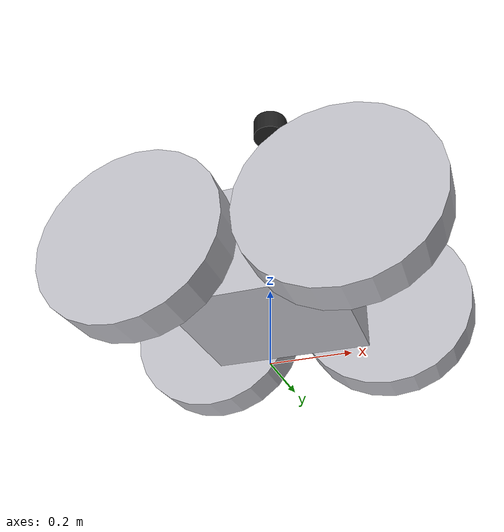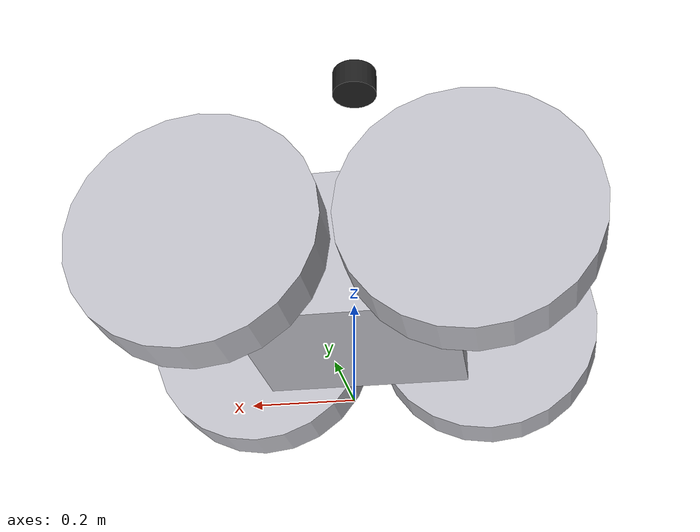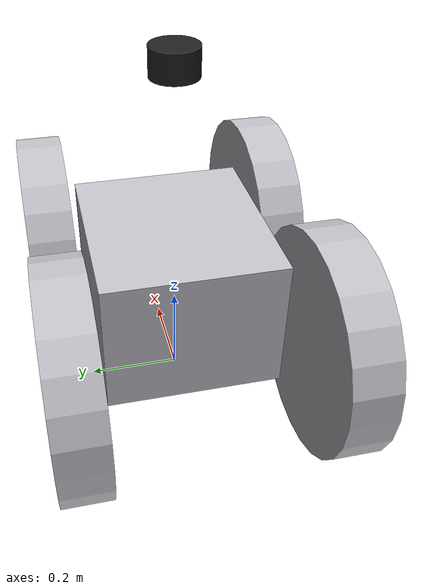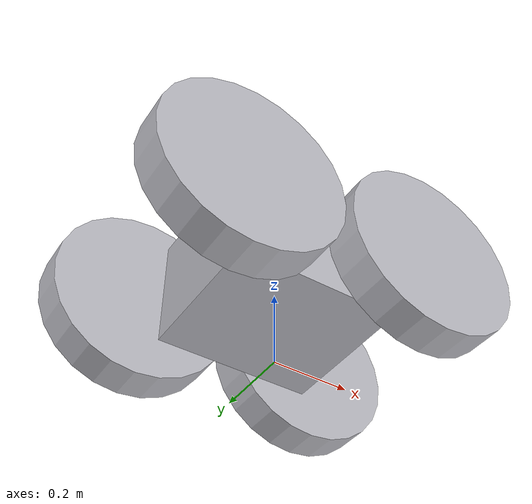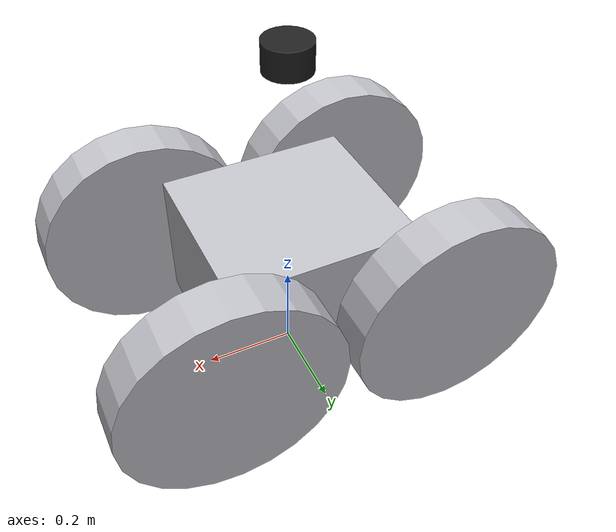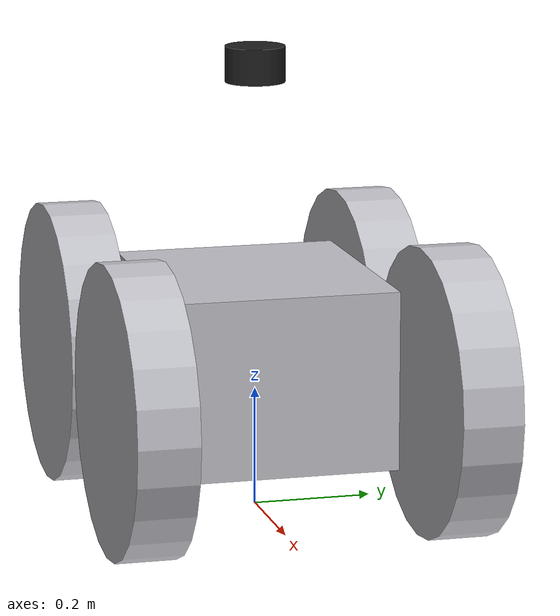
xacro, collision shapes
<?xml version="1.0" ?>
<robot name="diadem" xmlns:xacro="http://www.ros.org/wiki/xacro">

<xacro:include filename="$(find diadem_description)/urdf/materials.xacro" />
<xacro:include filename="$(find diadem_description)/urdf/diadem.trans" />
<xacro:include filename="$(find diadem_description)/urdf/diadem.gazebo" />

<link name="base_link">
  <inertial>
    <!-- CoM slightly above geometric center; Z≈0.15 (half of 0.30m body height) -->
    <origin xyz="0.0 0.0 0.15" rpy="0 0 0"/>
    <mass value="90.0"/>
    <inertia ixx="3.112" iyy="5.595" izz="7.357" ixy="0.0" iyz="0.0" ixz="0.0"/>
  </inertial>
  <visual>
    <origin xyz="0 0 0" rpy="0 0 0"/>
    <geometry>
      <mesh filename="package://diadem_description/meshes/base_link.dae" scale="0.000892857 0.00080 0.00133333"/>
    </geometry>
    <material name="silver"/>
  </visual>
  <collision name="base_link_collision">
    <!-- Inset collision: X=0.42m, Y=0.38m (clears wheels completely), Z=0.25m (floats above ground) -->
    <origin xyz="0 0 0.25" rpy="0 0 0"/>
    <geometry>
      <box size="0.42 0.38 0.30"/>
    </geometry>
  </collision>
</link>

<!-- =================== WHEELS =================== -->

<link name="RR_wheel_1">
  <inertial>
    <origin xyz="0.0 0.0 0.0" rpy="0 0 0"/>
    <mass value="11.4"/>
    <inertia ixx="0.174" iyy="0.328" izz="0.174" ixy="0.0" iyz="0.0" ixz="0.0"/>
  </inertial>
  <visual>
    <!-- Exact mathematical offset to center the scaled wheel at joint origin -->
    <origin xyz="0.37333 0.40 -0.24" rpy="0 0 0"/>
    <geometry>
      <mesh filename="package://diadem_description/meshes/RR_wheel_1.dae" scale="0.00133333 0.00133333 0.00133333"/>
    </geometry>
    <material name="silver"/>
  </visual>
  <collision name="RR_wheel_1_collision">
    <origin xyz="0 0 0" rpy="1.57079632679 0 0"/>
    <geometry>
      <cylinder radius="0.24" length="0.10"/>
    </geometry>
  </collision>
</link>

<link name="FL_wheel_1">
  <inertial>
    <origin xyz="0.0 0.0 0.0" rpy="0 0 0"/>
    <mass value="11.4"/>
    <inertia ixx="0.174" iyy="0.328" izz="0.174" ixy="0.0" iyz="0.0" ixz="0.0"/>
  </inertial>
  <visual>
    <origin xyz="-0.37333 -0.40 -0.24" rpy="0 0 0"/>
    <geometry>
      <mesh filename="package://diadem_description/meshes/FL_wheel_1.dae" scale="0.00133333 0.00133333 0.00133333"/>
    </geometry>
    <material name="silver"/>
  </visual>
  <collision name="FL_wheel_1_collision">
    <origin xyz="0 0 0" rpy="1.57079632679 0 0"/>
    <geometry>
      <cylinder radius="0.24" length="0.10"/>
    </geometry>
  </collision>
</link>

<link name="RL_wheel_1">
  <inertial>
    <origin xyz="0.0 0.0 0.0" rpy="0 0 0"/>
    <mass value="11.4"/>
    <inertia ixx="0.174" iyy="0.328" izz="0.174" ixy="0.0" iyz="0.0" ixz="0.0"/>
  </inertial>
  <visual>
    <origin xyz="0.37333 -0.40 -0.24" rpy="0 0 0"/>
    <geometry>
      <mesh filename="package://diadem_description/meshes/RL_wheel_1.dae" scale="0.00133333 0.00133333 0.00133333"/>
    </geometry>
    <material name="silver"/>
  </visual>
  <collision name="RL_wheel_1_collision">
    <origin xyz="0 0 0" rpy="1.57079632679 0 0"/>
    <geometry>
      <cylinder radius="0.24" length="0.10"/>
    </geometry>
  </collision>
</link>

<link name="FR_wheel_1">
  <inertial>
    <origin xyz="0.0 0.0 0.0" rpy="0 0 0"/>
    <mass value="11.4"/>
    <inertia ixx="0.174" iyy="0.328" izz="0.174" ixy="0.0" iyz="0.0" ixz="0.0"/>
  </inertial>
  <visual>
    <origin xyz="-0.37333 0.40 -0.24" rpy="0 0 0"/>
    <geometry>
      <mesh filename="package://diadem_description/meshes/FR_wheel_1.dae" scale="0.00133333 0.00133333 0.00133333"/>
    </geometry>
    <material name="silver"/>
  </visual>
  <collision name="FR_wheel_1_collision">
    <origin xyz="0 0 0" rpy="1.57079632679 0 0"/>
    <geometry>
      <cylinder radius="0.24" length="0.10"/>
    </geometry>
  </collision>
</link>

<!-- =================== LiDAR =================== -->
<!-- Modelled as RP-LiDAR A3 equivalent: r=0.05m, h=0.06m, mass=0.19kg -->
<link name="lidar">
  <inertial>
    <origin xyz="0 0 0" rpy="0 0 0"/>
    <mass value="0.19"/>
    <inertia ixx="0.0002" iyy="0.0002" izz="0.0003" ixy="0.0" iyz="0.0" ixz="0.0"/>
  </inertial>
  <visual>
    <origin xyz="0 0 0" rpy="0 0 0"/>
    <geometry>
      <cylinder radius="0.05" length="0.06"/>
    </geometry>
    <material name="black"/>
  </visual>
  <collision>
    <origin xyz="0 0 0" rpy="0 0 0"/>
    <geometry>
      <cylinder radius="0.05" length="0.06"/>
    </geometry>
  </collision>
</link>

<!-- =================== FIXED LINKS =================== -->
<link name="imu_link"/>
<link name="camera_link"/>

<!-- =================== JOINTS =================== -->

<!-- IMU at ~top of body box: body H=0.30 m -->
<joint name="imu_joint" type="fixed">
    <origin rpy="0 0 0" xyz="0.0 0.0 0.30"/>
    <parent link="base_link"/>
    <child link="imu_link"/>
</joint>

<!-- Wheel joints
     X = ±wheelbase/2 = ±0.25 m
     Y = ±track/2     = ±0.26 m  (track=0.52m, half=0.26m)
     Z = wheel radius  = 0.3048 m (wheel hub height above base_link origin)
-->

<!-- RR: Rear-Right  → X=-0.25, Y=-0.26 -->
<joint name="RR_wheel_joint" type="continuous">
  <origin xyz="-0.25 -0.26 0.24" rpy="0 0 0"/>
  <parent link="base_link"/>
  <child link="RR_wheel_1"/>
  <axis xyz="0.0 1.0 0.0"/>
</joint>

<!-- FL: Front-Left  → X=+0.25, Y=+0.26 -->
<joint name="FL_wheel_joint" type="continuous">
  <origin xyz="0.25 0.26 0.24" rpy="0 0 0"/>
  <parent link="base_link"/>
  <child link="FL_wheel_1"/>
  <axis xyz="0.0 1.0 0.0"/>
</joint>

<!-- RL: Rear-Left   → X=-0.25, Y=+0.26 -->
<joint name="RL_wheel_joint" type="continuous">
  <origin xyz="-0.25 0.26 0.24" rpy="0 0 0"/>
  <parent link="base_link"/>
  <child link="RL_wheel_1"/>
  <axis xyz="0.0 1.0 0.0"/>
</joint>

<!-- FR: Front-Right → X=+0.25, Y=-0.26 -->
<joint name="FR_wheel_joint" type="continuous">
  <origin xyz="0.25 -0.26 0.24" rpy="0 0 0"/>
  <parent link="base_link"/>
  <child link="FR_wheel_1"/>
  <axis xyz="0.0 1.0 0.0"/>
</joint>

<!-- LiDAR: mounted on top of body, centred, at body_H + half_lidar_H = 0.30+0.03 = 0.33m
     Add 0.42m additional mast to clear the body and give good scan plane -->
<joint name="lidar_joint" type="fixed">
  <origin xyz="0.0 0.0 0.75" rpy="0 0 0"/>
  <parent link="base_link"/>
  <child link="lidar"/>
</joint>

<!-- Camera: slightly ahead of centre, tilted down 15° -->
<joint name="camera_joint" type="fixed">
    <parent link="base_link"/>
    <child link="camera_link"/>
    <origin xyz="0.30 0.0 0.55" rpy="0.0 0.26 0"/>
</joint>

</robot>
